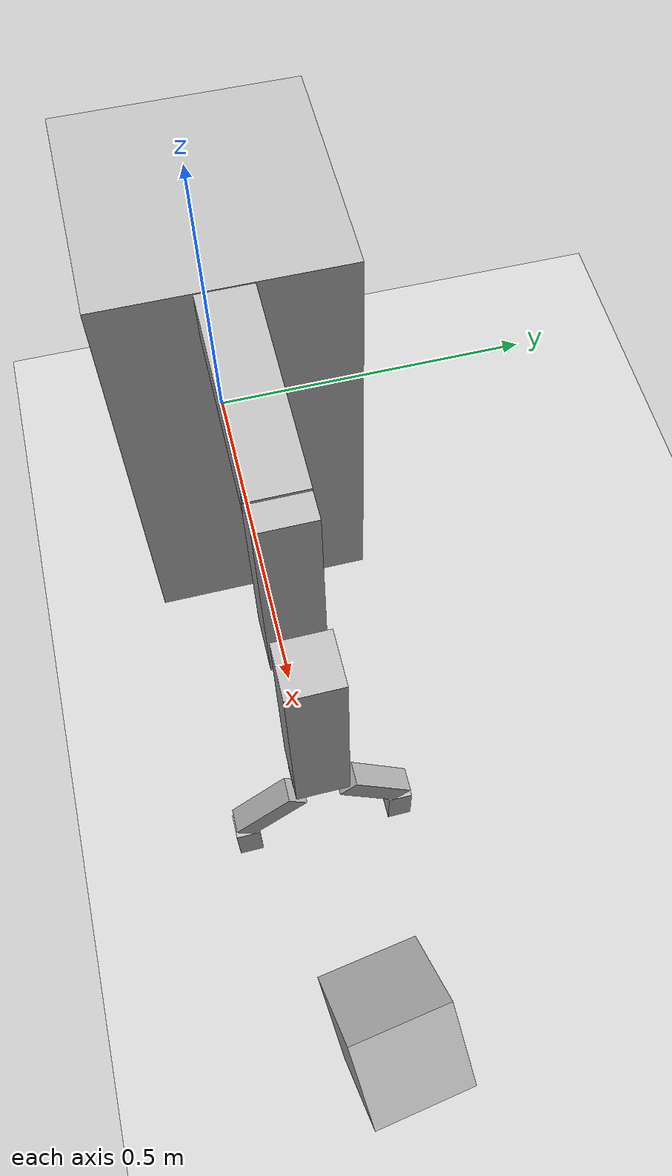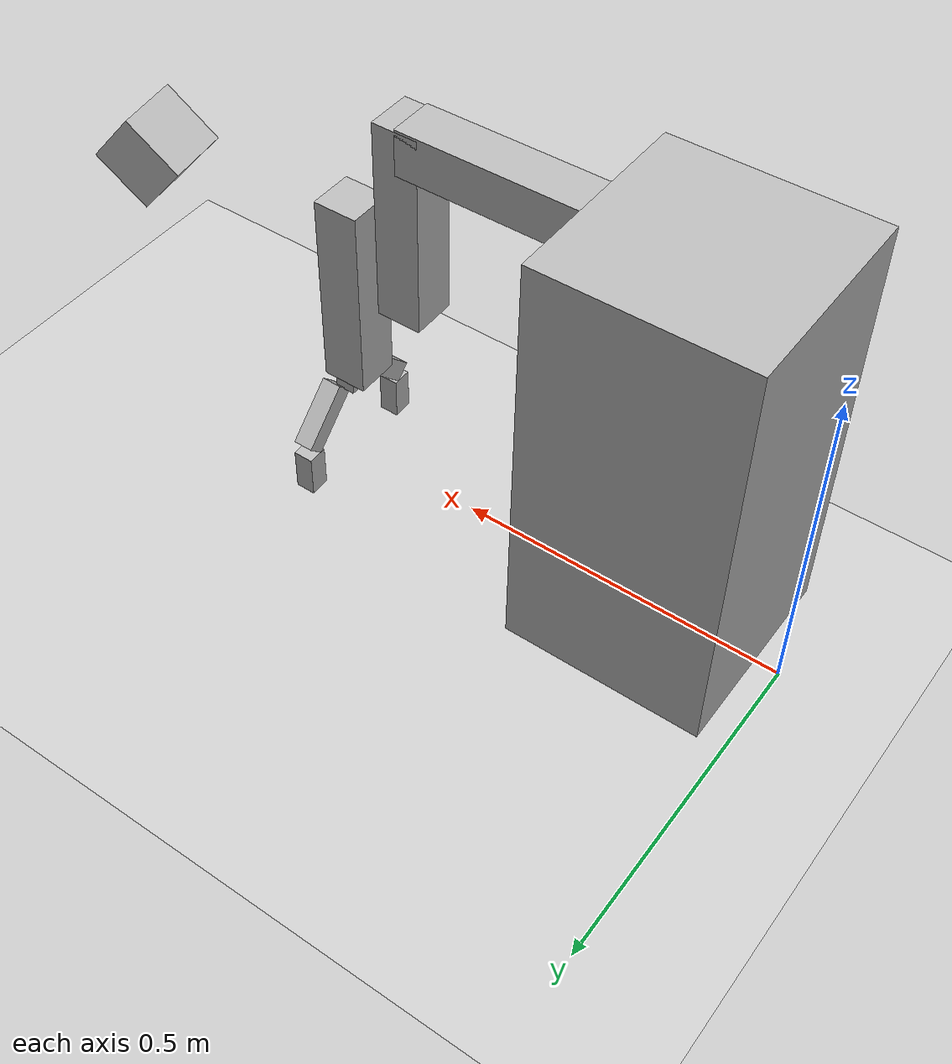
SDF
<sdf version="1.4">
 <world name="default">
  <include><uri>model://ground_plane</uri></include>
  <include><uri>model://sun</uri></include>
  <model name="camera">
   <static>true</static>
   <pose>1.05 0.0 0.4 0 0.7 -3</pose>
   <link name="link">
    <visual name="visual"><geometry><box><size>0.1 0.1 0.1</size></box></geometry></visual>
    <sensor name="my_camera" type="camera">
     <camera>
      <save enabled="false"><path>/home/user_adm/tmp/camera_save_tutorial</path></save>
      <horizontal_fov>1.047</horizontal_fov>
      <image><width>1920</width><height>1080</height></image>
      <clip><near>0.1</near><far>100</far></clip>
     </camera>
     <always_on>1</always_on>
     <update_rate>30</update_rate>
     <plugin name="camera_controller" filename="libgazebo_ros_camera.so">
      <alwaysOn>true</alwaysOn>
      <updateRate>0.0</updateRate>
      <cameraName>camera1</cameraName>
      <imageTopicName>image_raw</imageTopicName>
      <cameraInfoTopicName>camera_info</cameraInfoTopicName>
      <frameName>camera_link</frameName>
      <hackBaseline>0.07</hackBaseline>
      <distortionK1>0.0</distortionK1>
      <distortionK2>0.0</distortionK2>
      <distortionK3>0.0</distortionK3>
      <distortionT1>0.0</distortionT1>
      <distortionT2>0.0</distortionT2>
     </plugin>
    </sensor>
   </link>
  </model>
  <include><uri>model://simple_manipulator2</uri></include>
 </world>
</sdf>

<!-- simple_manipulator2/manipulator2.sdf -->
<sdf version="1.4">
  <model name="simple_manipulator2">

    <include>
      <uri>model://my_gripper2</uri>
      <pose>0.7 0 0.017 0 0 0</pose>
    </include>

    <include>
      <uri>model://my_simple_arm</uri>
      <pose>0 0 0 0 0 0</pose>
    </include>

    <joint name="arm_gripper_joint" type="prismatic">
      <parent>simple_arm::forearm</parent>
      <child>simple_gripper2::riser</child>
      <axis>
                <limit>
                    <lower>0</lower>
                    <upper>0.3</upper>
                </limit>
                <xyz>0 0 1</xyz>
            </axis>
    </joint>

  </model>
</sdf>

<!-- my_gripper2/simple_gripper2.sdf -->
<sdf version="1.4">
    <model name="simple_gripper2">
        <link name="riser">
            <pose>0.0 0.0 0.3 0 0 0</pose>
            <inertial>
                <pose>0 0 -0.17 0 0 0</pose>
                <inertia>
                    <ixx>0.01</ixx>
                    <ixy>0</ixy>
                    <ixz>0</ixz>
                    <iyy>0.01</iyy>
                    <iyz>0</iyz>
                    <izz>0.01</izz>
                </inertia>
                <mass>10.0</mass>
            </inertial>
            <collision name="collision">
                <geometry>
                    <box>
                        <size>0.067 0.067 0.3</size>
                    </box>
                </geometry>
            </collision>
            <visual name="visual">
                <geometry>
                    <box>
                        <size>0.067 0.067 0.3</size>
                    </box>
                </geometry>
                <material>
                    <script>Gazebo/Purple</script>
                </material>
            </visual>
        </link>
        <link name="palm">
            <pose>0.0 0.0 0.15 0 0 0</pose>
            <inertial>
                <inertia>
                    <ixx>0.01</ixx>
                    <ixy>0</ixy>
                    <ixz>0</ixz>
                    <iyy>0.01</iyy>
                    <iyz>0</iyz>
                    <izz>0.01</izz>
                </inertia>
                <mass>0.5</mass>
            </inertial>
            <collision name="collision">
                <geometry>
                    <box>
                        <size>0.03 0.067 0.03</size>
                    </box>
                </geometry>
            </collision>
            <visual name="visual">
                <geometry>
                    <box>
                        <size>0.03 0.067 0.03</size>
                    </box>
                </geometry>
                <material>
                    <script>Gazebo/Red</script>
                </material>
            </visual>
        </link>
        <link name="left_finger">
            <pose>0.017 0.067 0.1 -0.78539 0 0</pose>
            <inertial>
                <inertia>
                    <ixx>0.01</ixx>
                    <ixy>0</ixy>
                    <ixz>0</ixz>
                    <iyy>0.01</iyy>
                    <iyz>0</iyz>
                    <izz>0.01</izz>
                </inertia>
                <mass>0.1</mass>
            </inertial>
            <collision name="collision">
                <geometry>
                    <box>
                        <size>0.03 0.1 0.03</size>
                    </box>
                </geometry>
            </collision>
            <visual name="visual">
                <geometry>
                    <box>
                        <size>0.03 0.1 0.03</size>
                    </box>
                </geometry>
                <material>
                    <script>Gazebo/Blue</script>
                </material>
            </visual>
        </link>
        <link name="left_finger_tip">
            <pose>0.017 0.1 0.021 1.5707 0 0</pose>
            <inertial>
                <inertia>
                    <ixx>0.01</ixx>
                    <ixy>0</ixy>
                    <ixz>0</ixz>
                    <iyy>0.01</iyy>
                    <iyz>0</iyz>
                    <izz>0.01</izz>
                </inertia>
                <mass>0.1</mass>
            </inertial>
            <collision name="collision">
                <geometry>
                    <box>
                        <size>0.03 0.067 0.03</size>
                    </box>
                </geometry>
            </collision>
            <visual name="visual">
                <geometry>
                    <box>
                        <size>0.03 0.067 0.03</size>
                    </box>
                </geometry>
                <material>
                    <script>Gazebo/Blue</script>
                </material>
            </visual>
        </link>
        <link name="right_finger">
            <pose>0.017 -0.067 0.1 0.78539 0 0</pose>
            <inertial>
                <inertia>
                    <ixx>0.01</ixx>
                    <ixy>0</ixy>
                    <ixz>0</ixz>
                    <iyy>0.01</iyy>
                    <iyz>0</iyz>
                    <izz>0.01</izz>
                </inertia>
                <mass>0.1</mass>
            </inertial>
            <collision name="collision">
                <geometry>
                    <box>
                        <size>0.03 0.1 0.03</size>
                    </box>
                </geometry>
            </collision>
            <visual name="visual">
                <geometry>
                    <box>
                        <size>0.03 0.1 0.03</size>
                    </box>
                </geometry>
                <material>
                    <script>Gazebo/Green</script>
                </material>
            </visual>
        </link>
        <link name="right_finger_tip">
            <pose>0.017 -0.1 0.021 1.5707 0 0</pose>
            <inertial>
                <inertia>
                    <ixx>0.01</ixx>
                    <ixy>0</ixy>
                    <ixz>0</ixz>
                    <iyy>0.01</iyy>
                    <iyz>0</iyz>
                    <izz>0.01</izz>
                </inertia>
                <mass>0.1</mass>
            </inertial>
            <collision name="collision">
                <geometry>
                    <box>
                        <size>0.03 0.067 0.03</size>
                    </box>
                </geometry>
            </collision>
            <visual name="visual">
                <geometry>
                    <box>
                        <size>0.03 0.067 0.03</size>
                    </box>
                </geometry>
                <material>
                    <script>Gazebo/Green</script>
                </material>
            </visual>
        </link>
        <static>false</static>

        <joint name="palm_left_finger" type="revolute">
            <pose>0 -0.05 0 0 0 0</pose>
            <child>left_finger</child>
            <parent>palm</parent>
            <axis>
                <limit>
                    <lower>-0.4</lower>
                    <upper>0.4</upper>
                </limit>
                <xyz>1 0 0</xyz>
            </axis>
        </joint>
        <joint name="left_finger_tip_joint" type="revolute">
            <pose>0 0.03 0 0 0 0</pose>
            <child>left_finger_tip</child>
            <parent>left_finger</parent>
            <axis>
                <limit>
                    <lower>-0.4</lower>
                    <upper>0.4</upper>
                </limit>
                <xyz>1 0 0</xyz>
            </axis>
        </joint>
        <joint name="palm_right_finger" type="revolute">
            <pose>0 0.05 0 0 0 0</pose>
            <child>right_finger</child>
            <parent>palm</parent>
            <axis>
                <limit>
                    <lower>-0.4</lower>
                    <upper>0.4</upper>
                </limit>
                <xyz>1 0 0</xyz>
            </axis>
        </joint>
        <joint name="right_finger_tip_joint" type="revolute">
            <pose>0 0.03 0 0 0 0</pose>
            <child>right_finger_tip</child>
            <parent>right_finger</parent>
            <axis>
                <limit>
                    <lower>-0.4</lower>
                    <upper>0.4</upper>
                </limit>
                <xyz>1 0 0</xyz>
            </axis>
        </joint>
        <joint name="palm_riser" type="fixed">
            <child>palm</child>
            <parent>riser</parent>
        </joint>
    </model>
</sdf>

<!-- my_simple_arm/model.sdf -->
<sdf version='1.5'>
  <model name="simple_arm">
    <link name='base'>
      <pose>0.187 0 0.3 0 0 0</pose>

      <inertial>
        <mass>1000.0</mass>
        <pose>-0.03 0 -0.03 0 0 0</pose>
        <inertia>
          <ixx>0.5</ixx>
          <iyy>1.0</iyy>
          <izz>0.1</izz>
        </inertia>
      </inertial>

      <collision name='collision'>
        <geometry>
          <box>
            <size>0.3 0.3 0.67</size>
          </box>
        </geometry>
      </collision>

      <visual name='visual'>
        <geometry>
          <box>
            <size>0.3 0.3 0.67</size>
          </box>
        </geometry>
      </visual>
    </link>
    <link name='arm'>
      <pose>0.45 0 0.6 0 0 0</pose>

      <inertial>
        <mass>0.5</mass>
        <pose>-0.03 0 -0.03 0 0 0</pose>
        <inertia>
          <ixx>0.5</ixx>
          <iyy>1.0</iyy>
          <izz>0.1</izz>
        </inertia>
      </inertial>

      <collision name='collision'>
        <geometry>
          <box>
            <size>0.3 0.067 0.067</size>
          </box>
        </geometry>
      </collision>

      <visual name='visual'>
        <geometry>
          <box>
            <size>0.3 0.067 0.067</size>
          </box>
        </geometry>
      </visual>
    </link>
    <link name='forearm'>
      <pose>0.6 0 0.48 0 0 0</pose>

      <inertial>
        <mass>0.5</mass>
        <pose>-0.03 0 -0.03 0 0 0</pose>
        <inertia>
          <ixx>0.5</ixx>
          <iyy>1.0</iyy>
          <izz>0.1</izz>
        </inertia>
      </inertial>

      <collision name='collision'>
        <geometry>
          <box>
            <size>0.067 0.067 0.3</size>
          </box>
        </geometry>
      </collision>

      <visual name='visual'>
        <geometry>
          <box>
            <size>0.067 0.067 0.3</size>
          </box>
        </geometry>
      </visual>
    </link>
    <joint name="arm_base_joint" type="fixed">
      <parent>base</parent>
      <child>arm</child>

    </joint>
     <joint name="forearm_arm_joint" type="fixed">
      <parent>arm</parent>
      <child>forearm</child>

    </joint>
   <static>0</static>
  </model>
 </sdf>
